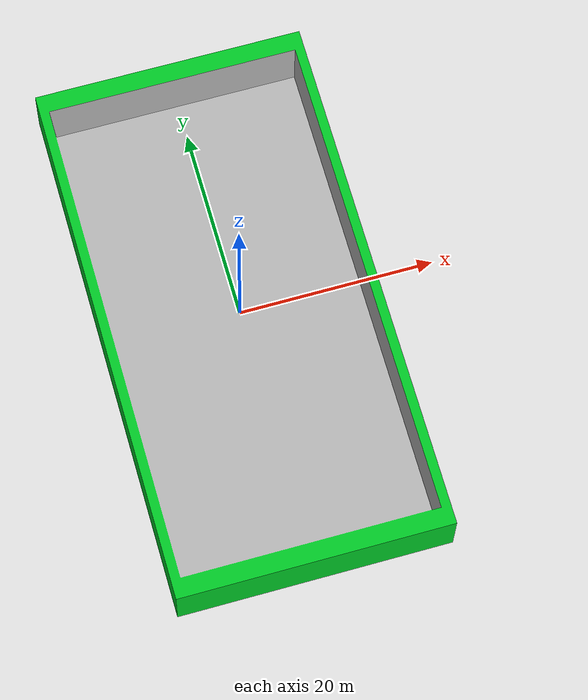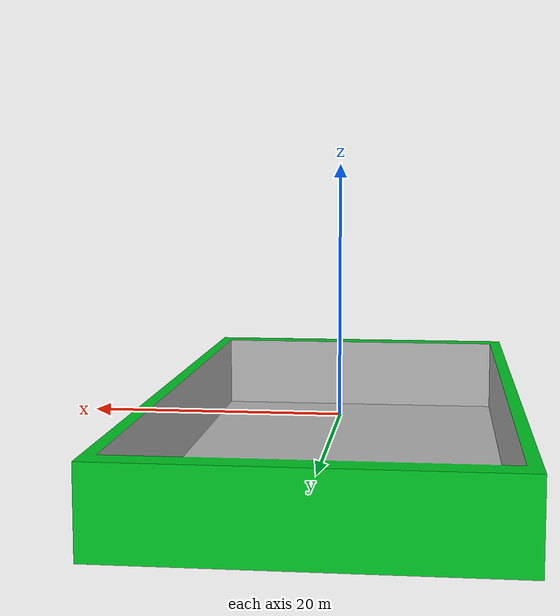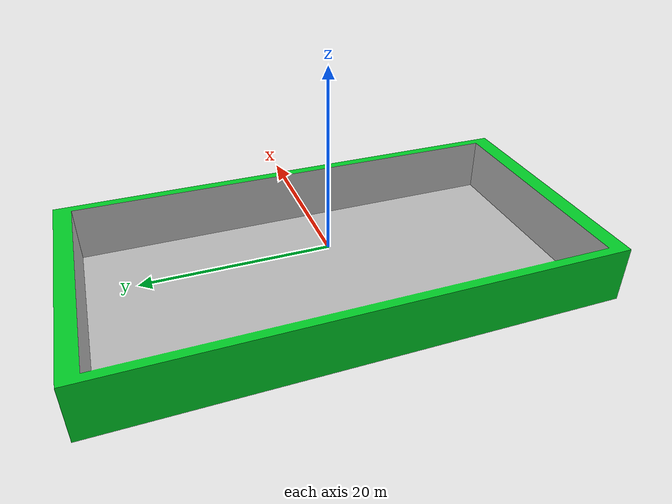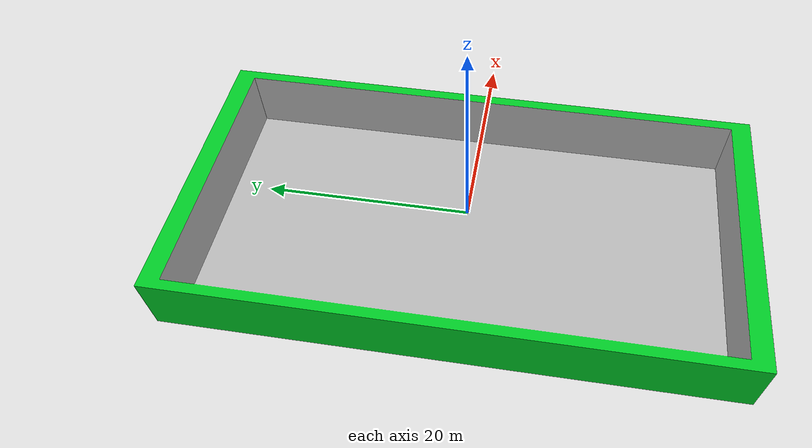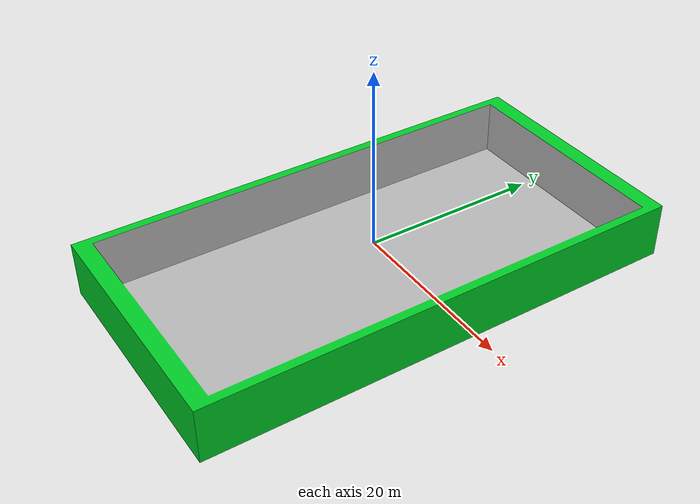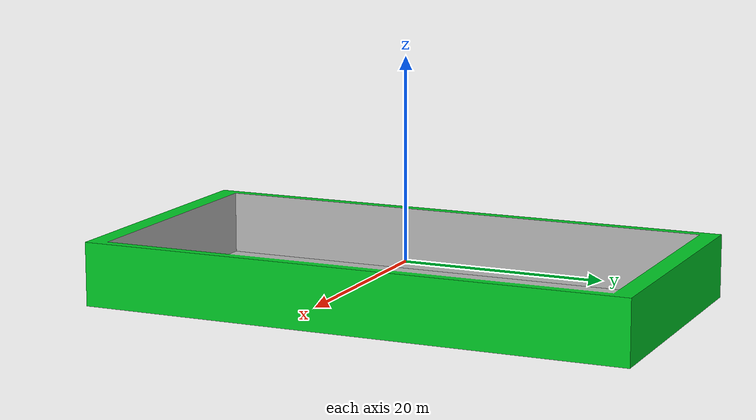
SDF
<?xml version='1.0'?>
<sdf version='1.5'>

  <model name='pool'>
    <pose>0 0 -2 0 0 0</pose>
    <self_collide> 0 </self_collide>
    <static> 1</static>

    <link name='pool_link'>
      <pose>0 0 -2 0 0 0</pose>
      <visual name='pool_visual'>
        <geometry>
            <mesh>
              <scale>1 1 3</scale>
              <uri>model://meshes/pool.dae</uri>
            </mesh>
        </geometry>
        <material>
          <emissive>
            0.2 0.2 0.2 1.0
          </emissive>
        </material>
      </visual>
      <collision name='pool_collision'>
        <geometry>
            <mesh>
              <uri>model://meshes/pool.dae</uri>
            </mesh>
        </geometry>
      </collision>
    </link>

  </model>
</sdf>
